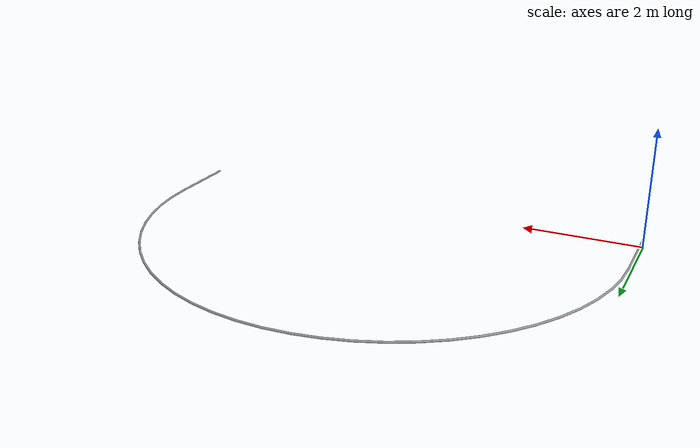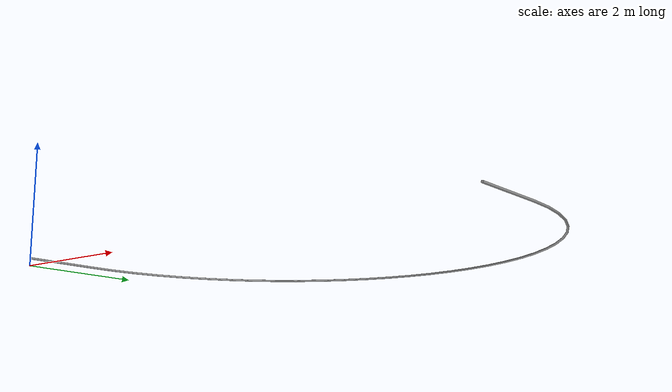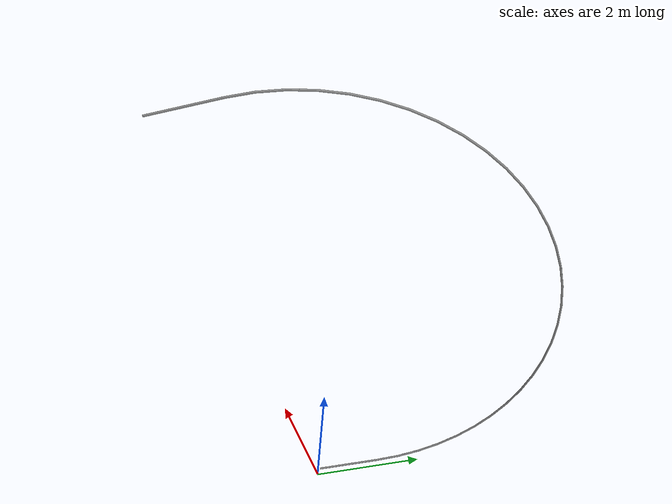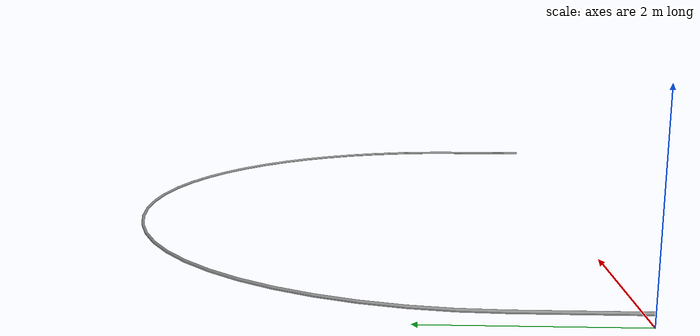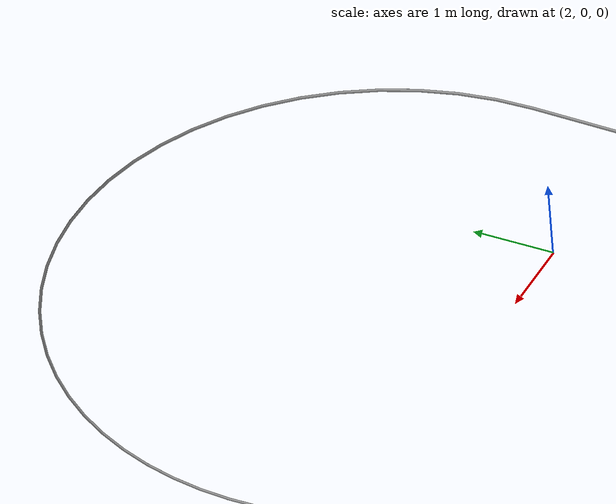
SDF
<?xml version="1.0" ?>
<sdf version="1.5">
    <model name="dummy_arch">
        <static>1</static>
        <pose>0.0 0.0 0.1 0.0 0.0 0.0</pose>
        <link name="link">
                <kinematic>0</kinematic>
                <inertial>
                        <mass>1</mass>
                        <inertia>
                                <ixz>0</ixz>
                                <ixx>10.0</ixx>
                                <ixy>0</ixy>
                                <izz>10.0</izz>
                                <iyy>1</iyy>
                                <iyz>10.0</iyz>
                        </inertia>
                </inertial>
                <self_collide>0</self_collide>
                <gravity>1</gravity>
                <collision name="collision">
                        <geometry>
                            <mesh>
                                <uri>model://dummy_arch/dummy_arch.stl</uri>
                            </mesh>
                        </geometry>
                        <max_contacts>10</max_contacts>
                        <surface>
                                <contact>
                                        <ode></ode>
                                </contact>
                                <bounce></bounce>
                                <friction>
                                        <ode></ode>
                                </friction>
                        </surface>
                </collision>
                <visual name="visual">
                        <geometry>
                            <mesh>
                                <uri>model://dummy_arch/dummy_arch.stl</uri>
                            </mesh>
                        </geometry>
                        <material>
                                <script>
                                        <uri>file://media/materials/scripts/gazebo.material</uri>
                                        <name>Gazebo/Grey</name>
                                </script>
                        </material>
                </visual>
                <velocity_decay>
                        <linear>0</linear>
                        <angular>0</angular>
                </velocity_decay>
        </link>
    </model>
</sdf>
